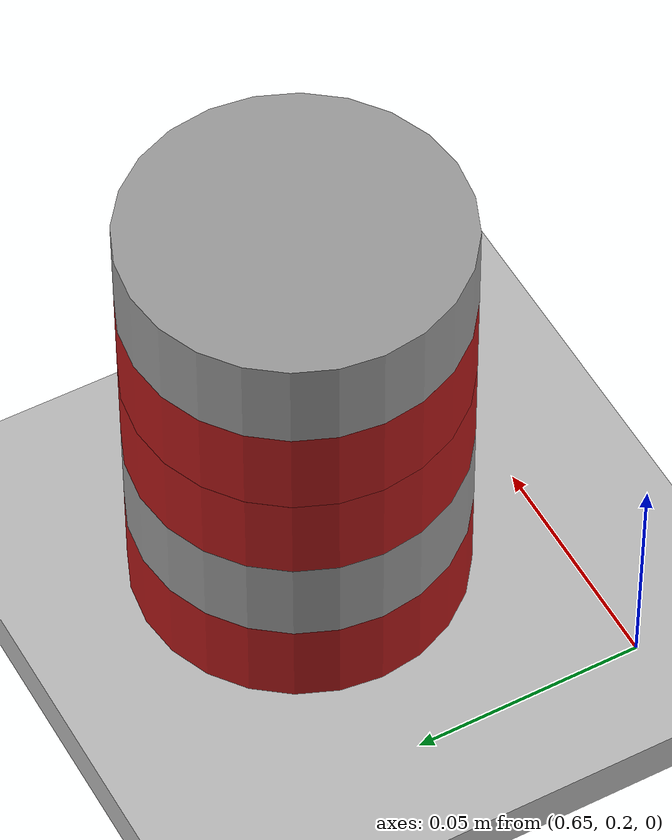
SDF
<?xml version="1.0" ?>
<sdf version="1.4">
  <world name="default">
    <include>
      <uri>model://ground_plane</uri>
    </include>

    <include>
      <uri>model://sun</uri>

    </include>
    <model name='platform'>
      <link name='link'>
        <inertial>
          <mass>80</mass>
          <inertia>
            <ixx>1</ixx>
            <ixy>0</ixy>
            <ixz>0</ixz>
            <iyy>1</iyy>
            <iyz>0</iyz>
            <izz>1</izz>
          </inertia>
          <pose>0 0 0 0 -0 0</pose>
        </inertial>
        <self_collide>1</self_collide>
        <enable_wind>0</enable_wind>
        <kinematic>0</kinematic>
        <pose>0 0 0 0 -0 0</pose>
        <gravity>1</gravity>
        <visual name='visual'>
          <geometry>
            <box>
              <size>2 1.7 0.01</size>
            </box>
          </geometry>
          <material>
            <script>
              <uri>model://platform/materials/scripts/</uri>
              <uri>model://platform/materials/textures</uri>
              <name>path/Image</name>
            </script>
            <shader type='vertex'>
              <normal_map>__default__</normal_map>
            </shader>
          </material>
          <pose>0 0 0 0 -0 0</pose>
          <transparency>0</transparency>
          <cast_shadows>1</cast_shadows>
        </visual>
        <collision name='collision'>
          <laser_retro>0</laser_retro>
          <max_contacts>10</max_contacts>
          <pose>0 0 0 0 -0 0</pose>
          <geometry>
            <box>
              <size>2 1.7 0.01</size>
            </box>
          </geometry>
          <surface>
            <friction>
              <ode>
                <mu>10000</mu>
                <mu2>10000</mu2>
                <fdir1>0 0 0</fdir1>
                <slip1>0</slip1>
                <slip2>0</slip2>
              </ode>
            </friction>
            <bounce>
              <restitution_coefficient>0</restitution_coefficient>
              <threshold>1e+06</threshold>
            </bounce>
            <contact>
              <ode>
                <soft_cfm>0</soft_cfm>
                <soft_erp>0.2</soft_erp>
                <kp>1e+13</kp>
                <kd>1</kd>
                <max_vel>0.01</max_vel>
                <min_depth>0</min_depth>
              </ode>
            </contact>
          </surface>
        </collision>
      </link>
      <static>1</static>
      <allow_auto_disable>1</allow_auto_disable>
      <pose>0.80 -0.5 0 0 -0 0</pose>
    </model>
    <model name='unit_cylinder_red'>
      <link name='link'>
        <inertial>
          <mass>0.03</mass>
          <inertia>
            <ixx>1.</ixx>
            <ixy>0</ixy>
            <ixz>0</ixz>
            <iyy>1.</iyy>
            <iyz>0</iyz>
            <izz>1.</izz>
          </inertia>
          <pose>0 0 0 0 -0 0</pose>
        </inertial>
        <self_collide>0</self_collide>
        <enable_wind>0</enable_wind>
        <kinematic>0</kinematic>
        <pose>0 0 0 0 -0 0</pose>
        <gravity>1</gravity>
        <visual name='visual'>
          <geometry>
            <cylinder>
              <radius>0.035</radius>
              <length>0.02</length>
            </cylinder>
          </geometry>
          <material>
            <script>
              <name>Gazebo/Grey</name>
              <uri>file://media/materials/scripts/gazebo.material</uri>
            </script>
            <shader type='pixel'>
              <normal_map>__default__</normal_map>
            </shader>
            <ambient>0.7 0.1 0.1 1</ambient>
            <diffuse>0.7 0.1 0.1 0.9</diffuse>
            <specular>0.8 0.01 0.01 0.9</specular>
            <emissive>0.11 0 0 1</emissive>
          </material>
          <pose>0 0 0 0 -0 0</pose>
          <transparency>0</transparency>
          <cast_shadows>1</cast_shadows>
        </visual>
        <collision name='collision'>
          <laser_retro>0</laser_retro>
          <max_contacts>10</max_contacts>
          <pose>0 0 0 0 -0 0</pose>
          <geometry>
            <cylinder>
              <radius>0.035</radius>
              <length>0.02</length>
            </cylinder>
          </geometry>
          <surface>
            <friction>
              <ode>
                <mu>500</mu>
                <mu2>500</mu2>
                <fdir1>0 0 0</fdir1>
                <slip1>0</slip1>
                <slip2>0</slip2>
              </ode>
            </friction>
            <bounce>
              <restitution_coefficient>0</restitution_coefficient>
              <threshold>1e+06</threshold>
            </bounce>
            <contact>
              <collide_without_contact>0</collide_without_contact>
              <collide_without_contact_bitmask>1</collide_without_contact_bitmask>
              <collide_bitmask>1</collide_bitmask>
              <ode>
                <soft_cfm>0</soft_cfm>
                <soft_erp>0.2</soft_erp>
                <kp>1e+5</kp>
                <kd>1</kd>
                <max_vel>0.01</max_vel>
                <min_depth>0</min_depth>
              </ode>
            </contact>
          </surface>
        </collision>
      </link>
      <static>1</static>
      <allow_auto_disable>1</allow_auto_disable>
      <pose>0.7 0.25 0.015 0 0 0</pose>
    </model>
    <model name='unit_cylinder_white'>
      <link name='link'>
        <inertial>
          <mass>0.03</mass>
          <inertia>
            <ixx>1</ixx>
            <ixy>0</ixy>
            <ixz>0</ixz>
            <iyy>1</iyy>
            <iyz>0</iyz>
            <izz>1</izz>
          </inertia>
          <pose>0 0 0 0 -0 0</pose>
        </inertial>
        <self_collide>0</self_collide>
        <enable_wind>0</enable_wind>
        <kinematic>0</kinematic>
        <pose>0 0 0 0 -0 0</pose>
        <gravity>1</gravity>
        <visual name='visual'>
          <geometry>
            <cylinder>
              <radius>0.035</radius>
              <length>0.02</length>
            </cylinder>
          </geometry>
          <material>
            <script>
              <name>Gazebo/Grey</name>
              <uri>file://media/materials/scripts/gazebo.material</uri>
            </script>
            <shader type='pixel'>
              <normal_map>__default__</normal_map>
            </shader>
            <ambient>0.8 0.8 0.8 1</ambient>
            <diffuse>0.8 0.8 0.8 0.9</diffuse>
            <specular>0.7 0.7 0.7 0.9</specular>
            <emissive>0.3 0.3 0.3 1</emissive>
          </material>
          <pose>0 0 0 0 -0 0</pose>
          <transparency>0</transparency>
          <cast_shadows>1</cast_shadows>
        </visual>
        <collision name='collision'>
          <laser_retro>0</laser_retro>
          <max_contacts>10</max_contacts>
          <pose>0 0 0 0 -0 0</pose>
          <geometry>
            <cylinder>
              <radius>0.035</radius>
              <length>0.02</length>
            </cylinder>
          </geometry>
          <surface>
            <friction>
              <ode>
                <mu>500</mu>
                <mu2>500</mu2>
                <fdir1>0 0 0</fdir1>
                <slip1>0</slip1>
                <slip2>0</slip2>
              </ode>
              <torsional>
                <coefficient>1</coefficient>
                <patch_radius>0</patch_radius>
                <surface_radius>0</surface_radius>
                <use_patch_radius>1</use_patch_radius>
                <ode>
                  <slip>0</slip>
                </ode>
              </torsional>
            </friction>
            <bounce>
              <restitution_coefficient>0</restitution_coefficient>
              <threshold>1e+06</threshold>
            </bounce>
            <contact>
              <collide_without_contact>0</collide_without_contact>
              <collide_without_contact_bitmask>1</collide_without_contact_bitmask>
              <collide_bitmask>1</collide_bitmask>
              <ode>
                <soft_cfm>0</soft_cfm>
                <soft_erp>0.2</soft_erp>
                <kp>1e+5</kp>
                <kd>1</kd>
                <max_vel>0.01</max_vel>
                <min_depth>0</min_depth>
              </ode>
            </contact>
          </surface>
        </collision>
      </link>
      <static>1</static>
      <allow_auto_disable>1</allow_auto_disable>
      <pose>0.7 0.25 0.03501 0 0 0</pose>
    </model>
    <model name='unit_cylinder_red_2'>
      <link name='link'>
        <inertial>
          <mass>0.03</mass>
          <inertia>
            <ixx>1.</ixx>
            <ixy>0</ixy>
            <ixz>0</ixz>
            <iyy>1.</iyy>
            <iyz>0</iyz>
            <izz>1.</izz>
          </inertia>
          <pose>0 0 0 0 -0 0</pose>
        </inertial>
        <self_collide>0</self_collide>
        <enable_wind>0</enable_wind>
        <kinematic>0</kinematic>
        <pose>0 0 0 0 -0 0</pose>
        <gravity>1</gravity>
        <visual name='visual'>
          <geometry>
            <cylinder>
              <radius>0.035</radius>
              <length>0.02</length>
            </cylinder>
          </geometry>
          <material>
            <script>
              <name>Gazebo/Grey</name>
              <uri>file://media/materials/scripts/gazebo.material</uri>
            </script>
            <shader type='pixel'>
              <normal_map>__default__</normal_map>
            </shader>
            <ambient>0.7 0.1 0.1 1</ambient>
            <diffuse>0.7 0.1 0.1 0.9</diffuse>
            <specular>0.8 0.01 0.01 0.9</specular>
            <emissive>0.11 0 0 1</emissive>
          </material>
          <pose>0 0 0 0 -0 0</pose>
          <transparency>0</transparency>
          <cast_shadows>1</cast_shadows>
        </visual>
        <collision name='collision'>
          <laser_retro>0</laser_retro>
          <max_contacts>10</max_contacts>
          <pose>0 0 0 0 -0 0</pose>
          <geometry>
            <cylinder>
              <radius>0.035</radius>
              <length>0.02</length>
            </cylinder>
          </geometry>
          <surface>
            <friction>
              <ode>
                <mu>500</mu>
                <mu2>500</mu2>
                <fdir1>0 0 0</fdir1>
                <slip1>0</slip1>
                <slip2>0</slip2>
              </ode>
            </friction>
            <bounce>
              <restitution_coefficient>0</restitution_coefficient>
              <threshold>1e+06</threshold>
            </bounce>
            <contact>
              <collide_without_contact>0</collide_without_contact>
              <collide_without_contact_bitmask>1</collide_without_contact_bitmask>
              <collide_bitmask>1</collide_bitmask>
              <ode>
                <soft_cfm>0</soft_cfm>
                <soft_erp>0.2</soft_erp>
                <kp>1e+5</kp>
                <kd>1</kd>
                <max_vel>0.01</max_vel>
                <min_depth>0</min_depth>
              </ode>
            </contact>
          </surface>
        </collision>
      </link>
      <static>1</static>
      <allow_auto_disable>1</allow_auto_disable>
      <pose>0.7 0.25 0.05502 0 0 0</pose>
    </model>
    <model name='unit_cylinder_red_3'>
      <link name='link'>
        <inertial>
          <mass>0.03</mass>
          <inertia>
            <ixx>1.</ixx>
            <ixy>0</ixy>
            <ixz>0</ixz>
            <iyy>1.</iyy>
            <iyz>0</iyz>
            <izz>1.</izz>
          </inertia>
          <pose>0 0 0 0 -0 0</pose>
        </inertial>
        <self_collide>0</self_collide>
        <enable_wind>0</enable_wind>
        <kinematic>0</kinematic>
        <pose>0 0 0 0 -0 0</pose>
        <gravity>1</gravity>
        <visual name='visual'>
          <geometry>
            <cylinder>
              <radius>0.035</radius>
              <length>0.02</length>
            </cylinder>
          </geometry>
          <material>
            <script>
              <name>Gazebo/Grey</name>
              <uri>file://media/materials/scripts/gazebo.material</uri>
            </script>
            <shader type='pixel'>
              <normal_map>__default__</normal_map>
            </shader>
            <ambient>0.7 0.1 0.1 1</ambient>
            <diffuse>0.7 0.1 0.1 0.9</diffuse>
            <specular>0.8 0.01 0.01 0.9</specular>
            <emissive>0.11 0 0 1</emissive>
          </material>
          <pose>0 0 0 0 -0 0</pose>
          <transparency>0</transparency>
          <cast_shadows>1</cast_shadows>
        </visual>
        <collision name='collision'>
          <laser_retro>0</laser_retro>
          <max_contacts>10</max_contacts>
          <pose>0 0 0 0 -0 0</pose>
          <geometry>
            <cylinder>
              <radius>0.035</radius>
              <length>0.02</length>
            </cylinder>
          </geometry>
          <surface>
            <friction>
              <ode>
                <mu>500</mu>
                <mu2>500</mu2>
                <fdir1>0 0 0</fdir1>
                <slip1>0</slip1>
                <slip2>0</slip2>
              </ode>
            </friction>
            <bounce>
              <restitution_coefficient>0</restitution_coefficient>
              <threshold>1e+06</threshold>
            </bounce>
            <contact>
              <collide_without_contact>0</collide_without_contact>
              <collide_without_contact_bitmask>1</collide_without_contact_bitmask>
              <collide_bitmask>1</collide_bitmask>
              <ode>
                <soft_cfm>0</soft_cfm>
                <soft_erp>0.2</soft_erp>
                <kp>1e+5</kp>
                <kd>1</kd>
                <max_vel>0.01</max_vel>
                <min_depth>0</min_depth>
              </ode>
            </contact>
          </surface>
        </collision>
      </link>
      <static>1</static>
      <allow_auto_disable>1</allow_auto_disable>
      <pose>0.7 0.25 0.07503 0 0 0</pose>
    </model>
    <model name='unit_cylinder_white_2'>
      <link name='link'>
        <inertial>
          <mass>0.03</mass>
          <inertia>
            <ixx>1</ixx>
            <ixy>0</ixy>
            <ixz>0</ixz>
            <iyy>1</iyy>
            <iyz>0</iyz>
            <izz>1</izz>
          </inertia>
          <pose>0 0 0 0 -0 0</pose>
        </inertial>
        <self_collide>0</self_collide>
        <enable_wind>0</enable_wind>
        <kinematic>0</kinematic>
        <pose>0 0 0 0 -0 0</pose>
        <gravity>1</gravity>
        <visual name='visual'>
          <geometry>
            <cylinder>
              <radius>0.035</radius>
              <length>0.02</length>
            </cylinder>
          </geometry>
          <material>
            <script>
              <name>Gazebo/Grey</name>
              <uri>file://media/materials/scripts/gazebo.material</uri>
            </script>
            <shader type='pixel'>
              <normal_map>__default__</normal_map>
            </shader>
            <ambient>0.8 0.8 0.8 1</ambient>
            <diffuse>0.8 0.8 0.8 0.9</diffuse>
            <specular>0.7 0.7 0.7 0.9</specular>
            <emissive>0.3 0.3 0.3 1</emissive>
          </material>
          <pose>0 0 0 0 -0 0</pose>
          <transparency>0</transparency>
          <cast_shadows>1</cast_shadows>
        </visual>
        <collision name='collision'>
          <laser_retro>0</laser_retro>
          <max_contacts>10</max_contacts>
          <pose>0 0 0 0 -0 0</pose>
          <geometry>
            <cylinder>
              <radius>0.035</radius>
              <length>0.02</length>
            </cylinder>
          </geometry>
          <surface>
            <friction>
              <ode>
                <mu>500</mu>
                <mu2>500</mu2>
                <fdir1>0 0 0</fdir1>
                <slip1>0</slip1>
                <slip2>0</slip2>
              </ode>
              <torsional>
                <coefficient>1</coefficient>
                <patch_radius>0</patch_radius>
                <surface_radius>0</surface_radius>
                <use_patch_radius>1</use_patch_radius>
                <ode>
                  <slip>0</slip>
                </ode>
              </torsional>
            </friction>
            <bounce>
              <restitution_coefficient>0</restitution_coefficient>
              <threshold>1e+06</threshold>
            </bounce>
            <contact>
              <collide_without_contact>0</collide_without_contact>
              <collide_without_contact_bitmask>1</collide_without_contact_bitmask>
              <collide_bitmask>1</collide_bitmask>
              <ode>
                <soft_cfm>0</soft_cfm>
                <soft_erp>0.2</soft_erp>
                <kp>1e+5</kp>
                <kd>1</kd>
                <max_vel>0.01</max_vel>
                <min_depth>0</min_depth>
              </ode>
            </contact>
          </surface>
        </collision>
      </link>
      <static>1</static>
      <allow_auto_disable>1</allow_auto_disable>
      <pose>0.7 0.25 0.09504 0 0 0</pose>
    </model>
  </world>
</sdf>
